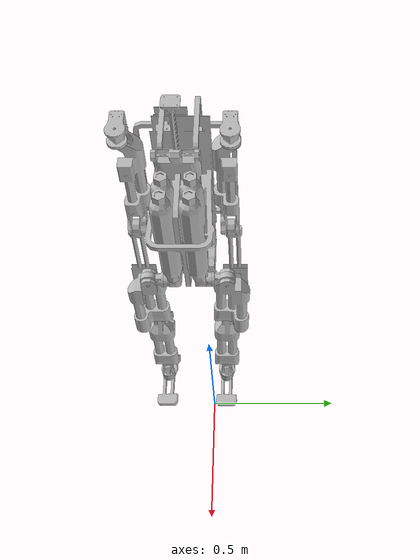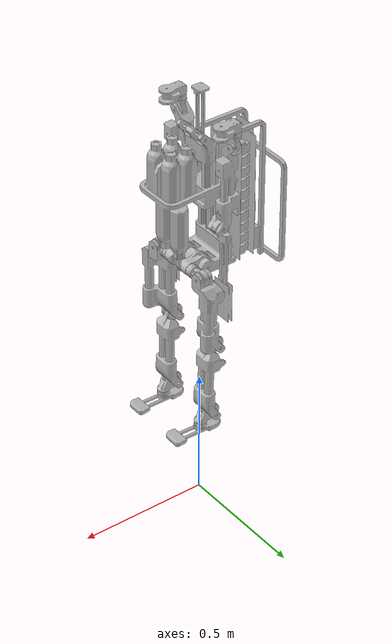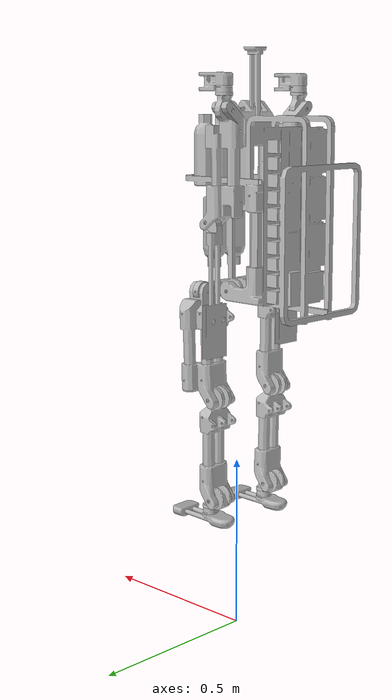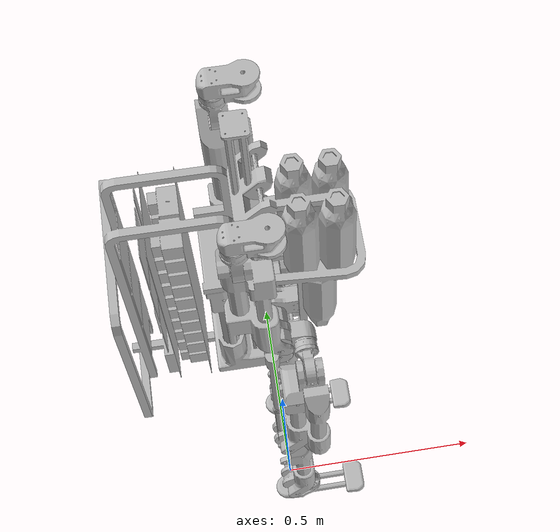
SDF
<?xml version='1.0'?>
<sdf version='1.4'>
  <model name="athletebot_fixed">
    <include>
      <uri>model://athletebot</uri>
      <pose>0.0 0 1.0 1.57 0.0 0.0</pose>
    </include>

    <joint name="fixed to ground" type="revolute">
      <parent>world</parent>
      <child>athletebot::trunk</child>
       <axis>
        <limit>
          <lower>0</lower>
          <upper>0</upper>
        </limit>
        <xyz>0 0 1</xyz>
        </axis>
    </joint>

  </model>
</sdf>

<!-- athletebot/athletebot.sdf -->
<sdf version='1.5'>
  <model name='athletebot'>
    <pose>0 0 0.7 1.57 -0 0</pose>
    <link name='trunk'>
      <pose>0 0 0 0 -0 0</pose>
      <inertial>
        <pose>-0.101196 0.217465 0.0391569 0 -0 0</pose>
        <mass>0.323922</mass>
        <inertia>
          <ixx>0.00844925</ixx>
          <ixy>-0.00131477</ixy>
          <ixz>3.80431e-05</ixz>
          <iyy>0.00389477</iyy>
          <iyz>-4.04572e-05</iyz>
          <izz>0.01073</izz>
        </inertia>
      </inertial>
      <collision name='trunk_collision'>
        <pose>0 0 0 0 -0 0</pose>
        <geometry>
          <mesh>
            <scale>0.001 0.001 0.001</scale>
            <uri>model://athletebot/meshes/trunk_all_asm.stl</uri>
          </mesh>
        </geometry>
        <surface>
          <contact>
            <ode/>
          </contact>
          <friction>
            <ode/>
          </friction>
        </surface>
      </collision>
      <visual name='trunk_visual'>
        <pose>0 0 0 0 -0 0</pose>
        <geometry>
          <mesh>
            <scale>0.001 0.001 0.001</scale>
            <uri>model://athletebot/meshes/trunk_all_asm.stl</uri>
          </mesh>
        </geometry>
      </visual>
      <gravity>1</gravity>
      <velocity_decay/>
      <self_collide>0</self_collide>
      <sensor name='imu_frame' type='imu'>
        <always_on>1</always_on>
        <update_rate>100</update_rate>
        <pose>0 0 0 0 -0 0</pose>
      </sensor>
    </link>
    <link name='l_hip_in_up'>
      <pose>0 0 0.115894 -3.14159 -0 -2.35619</pose>
      <inertial>
        <pose>-0.0380582 -0.0379993 0.141004 0 -0 0</pose>
        <mass>0.119967</mass>
        <inertia>
          <ixx>3.34839e-05</ixx>
          <ixy>-3.54776e-06</ixy>
          <ixz>2.52953e-06</ixz>
          <iyy>3.35663e-05</iyy>
          <iyz>2.49918e-06</iyz>
          <izz>4.17871e-05</izz>
        </inertia>
      </inertial>
      <collision name='l_hip_in_up_collision'>
        <pose>0 0 0.115894 0 -0 0</pose>
        <geometry>
          <mesh>
            <scale>0.001 0.001 0.001</scale>
            <uri>model://athletebot/meshes/l_hip_in_upper_prt.stl</uri>
          </mesh>
        </geometry>
      </collision>
      <collision name='l_hip_in_up_collision_l_hip_in_up_1'>
        <pose>-0.0388909 -0.0388909 0.139194 0 -0 0.261799</pose>
        <geometry>
          <mesh>
            <scale>0.001 0.001 0.001</scale>
            <uri>model://athletebot/meshes/ftsensor45a_asm.stl</uri>
          </mesh>
        </geometry>
      </collision>
      <collision name='l_hip_in_up_collision_l_hip_in_up_2'>
        <pose>1.08316e-14 -2.41543e-14 0.115894 0 -0 0</pose>
        <geometry>
          <mesh>
            <scale>0.001 0.001 0.001</scale>
            <uri>model://athletebot/meshes/l_hip_in_lower_part_prt.stl</uri>
          </mesh>
        </geometry>
      </collision>
      <visual name='l_hip_in_up_visual'>
        <pose>0 0 0.115894 0 -0 0</pose>
        <geometry>
          <mesh>
            <scale>0.001 0.001 0.001</scale>
            <uri>model://athletebot/meshes/l_hip_in_upper_prt.stl</uri>
          </mesh>
        </geometry>
      </visual>
      <visual name='l_hip_in_up_visual_l_hip_in_up_1'>
        <pose>-0.0388909 -0.0388909 0.139194 0 -0 0.261799</pose>
        <geometry>
          <mesh>
            <scale>0.001 0.001 0.001</scale>
            <uri>model://athletebot/meshes/ftsensor45a_asm.stl</uri>
          </mesh>
        </geometry>
      </visual>
      <visual name='l_hip_in_up_visual_l_hip_in_up_2'>
        <pose>1.08316e-14 -2.41543e-14 0.115894 0 -0 0</pose>
        <geometry>
          <mesh>
            <scale>0.001 0.001 0.001</scale>
            <uri>model://athletebot/meshes/l_hip_in_lower_part_prt.stl</uri>
          </mesh>
        </geometry>
      </visual>
    </link>
    <joint name='l_hip_pitch' type='revolute'>
      <child>l_hip_in_up</child>
      <parent>trunk</parent>
      <axis>
        <xyz>1.46246e-13 -1.46246e-13 -1</xyz>
        <limit>
          <lower>-1.57</lower>
          <upper>1.57</upper>
        </limit>
        <dynamics>
          <damping>0.1</damping>
          <friction>0</friction>
          <spring_reference>0</spring_reference>
          <spring_stiffness>0</spring_stiffness>
        </dynamics>
        <use_parent_model_frame>1</use_parent_model_frame>
      </axis>
    </joint>
    <link name='l_thigh'>
      <pose>0.055 1.90955e-13 -0.085 -0.0316366 -1.46245e-13 4.63961e-17</pose>
      <inertial>
        <pose>-0.0218292 -0.145277 -0.0133603 0 -0 0</pose>
        <mass>0.0509976</mass>
        <inertia>
          <ixx>0.000455256</ixx>
          <ixy>-2.0488e-05</ixy>
          <ixz>1.92391e-05</ixz>
          <iyy>8.07892e-05</iyy>
          <iyz>-2.24495e-06</iyz>
          <izz>0.000442805</izz>
        </inertia>
      </inertial>
      <collision name='l_thigh_collision'>
        <pose>-0.055 -0.300401 0 0 -0 0</pose>
        <geometry>
          <mesh>
            <scale>0.001 0.001 0.001</scale>
            <uri>model://athletebot/meshes/l_thigh_asm.stl</uri>
          </mesh>
        </geometry>
      </collision>
      <visual name='l_thigh_visual'>
        <pose>-0.055 -0.300401 0 0 -0 0</pose>
        <geometry>
          <mesh>
            <scale>0.001 0.001 0.001</scale>
            <uri>model://athletebot/meshes/l_thigh_asm.stl</uri>
          </mesh>
        </geometry>
      </visual>
    </link>
    <joint name='l_hip_roll' type='revolute'>
      <child>l_thigh</child>
      <parent>l_hip_in_up</parent>
      <axis>
        <xyz>1 4.63961e-17 1.46245e-13</xyz>
        <limit>
          <lower>-1.5708</lower>
          <upper>1.5708</upper>
          <effort>50000</effort>
          <velocity>50000</velocity>
        </limit>
        <dynamics>
          <damping>0.223</damping>
          <friction>0</friction>
          <spring_reference>0</spring_reference>
          <spring_stiffness>0</spring_stiffness>
        </dynamics>
        <use_parent_model_frame>1</use_parent_model_frame>
      </axis>
    </joint>
    <link name='l_shank'>
      <pose>2.35922e-14 -0.300251 -0.0754979 -0.0316264 0.000803033 0.0253773</pose>
      <inertial>
        <pose>0.0162517 -0.149735 4.58883e-05 0 -0 0</pose>
        <mass>0.0345995</mass>
        <inertia>
          <ixx>0.000312551</ixx>
          <ixy>6.15034e-06</ixy>
          <ixz>1.57279e-08</ixz>
          <iyy>3.02698e-05</iyy>
          <iyz>2.99291e-08</iyz>
          <izz>0.000301933</izz>
        </inertia>
      </inertial>
      <collision name='l_shank_collision'>
        <pose>0 -0.3 0 0 -0 0</pose>
        <geometry>
          <mesh>
            <scale>0.001 0.001 0.001</scale>
            <uri>model://athletebot/meshes/l_shank_asm.stl</uri>
          </mesh>
        </geometry>
      </collision>
      <visual name='l_shank_visual'>
        <pose>0 -0.3 0 0 -0 0</pose>
        <geometry>
          <mesh>
            <scale>0.001 0.001 0.001</scale>
            <uri>model://athletebot/meshes/l_shank_asm.stl</uri>
          </mesh>
        </geometry>
      </visual>
    </link>
    <joint name='l_knee_pitch' type='revolute'>
      <child>l_shank</child>
      <parent>l_thigh</parent>
      <axis>
        <xyz>3.7599e-10 -0.0316313 -0.9995</xyz>
        <limit>
          <lower>-2.61799</lower>
          <upper>2.61799</upper>
          <effort>50000</effort>
          <velocity>50000</velocity>
        </limit>
        <dynamics>
          <damping>0.223</damping>
          <friction>0</friction>
          <spring_reference>0</spring_reference>
          <spring_stiffness>0</spring_stiffness>
        </dynamics>
        <use_parent_model_frame>1</use_parent_model_frame>
      </axis>
    </joint>
    <link name='l_foot'>
      <pose>0.00761621 -0.596339 0.0498248 -3.14079 0.0316264 1.5962</pose>
      <inertial>
        <pose>-0.0472636 0.0354762 0.115935 0 -0 0</pose>
        <mass>0.122842</mass>
        <inertia>
          <ixx>7.60181e-04</ixx>
          <ixy>7.85001e-06</ixy>
          <ixz>-2.08089e-08</ixz>
          <iyy>3.11261e-04</iyy>
          <iyz>3.75761e-08</iyz>
          <izz>7.00553e-04</izz>
        </inertia>
      </inertial>
      <collision name='l_foot_collision'>
        <pose>8.89112e-07 0 0.115894 0 -0 0</pose>
        <geometry>
          <mesh>
            <scale>0.001 0.001 0.001</scale>
            <uri>model://athletebot/meshes/l_foot_prt.stl</uri>
          </mesh>
        </geometry>
      </collision>
      <collision name='l_foot_collision_l_foot_1'>
        <pose>-0.0489995 0.035 0.115894 1.5708 0.523599 1.5708</pose>
        <geometry>
          <mesh>
            <scale>0.001 0.001 0.001</scale>
            <uri>model://athletebot/meshes/ftsensor45a_asm.stl</uri>
          </mesh>
        </geometry>
      </collision>
      <collision name='l_foot_collision_l_foot_2'>
        <pose>-0.0207992 1.81677e-08 0.115894 -3.14159 -1.80002e-09 1.5708</pose>
        <geometry>
          <mesh>
            <scale>0.001 0.001 0.001</scale>
            <uri>model://athletebot/meshes/l_sole_asm.stl</uri>
          </mesh>
        </geometry>
      </collision>
      <visual name='l_foot_visual'>
        <pose>8.89112e-07 0 0.115894 0 -0 0</pose>
        <geometry>
          <mesh>
            <scale>0.001 0.001 0.001</scale>
            <uri>model://athletebot/meshes/l_foot_prt.stl</uri>
          </mesh>
        </geometry>
      </visual>
      <visual name='l_foot_visual_l_foot_1'>
        <pose>-0.0489995 0.035 0.115894 1.5708 0.523599 1.5708</pose>
        <geometry>
          <mesh>
            <scale>0.001 0.001 0.001</scale>
            <uri>model://athletebot/meshes/ftsensor45a_asm.stl</uri>
          </mesh>
        </geometry>
      </visual>
      <visual name='l_foot_visual_l_foot_2'>
        <pose>-0.0207992 1.81677e-08 0.115894 -3.14159 -1.80002e-09 1.5708</pose>
        <geometry>
          <mesh>
            <scale>0.001 0.001 0.001</scale>
            <uri>model://athletebot/meshes/l_sole_asm.stl</uri>
          </mesh>
        </geometry>
      </visual>
    </link>
    <joint name='l_ankle_pitch' type='revolute'>
      <child>l_foot</child>
      <parent>l_shank</parent>
      <axis>
        <xyz>3.65757e-10 -0.0316313 -0.9995</xyz>
        <limit>
          <lower>-1.5708</lower>
          <upper>1.5708</upper>
          <effort>50000</effort>
          <velocity>50000</velocity>
        </limit>
        <dynamics>
          <damping>0.223</damping>
          <friction>0</friction>
          <spring_reference>0</spring_reference>
          <spring_stiffness>0</spring_stiffness>
        </dynamics>
        <use_parent_model_frame>1</use_parent_model_frame>
      </axis>
    </joint>
    <link name='l_shoulder_lateral'>
      <pose>0 0.5 0.006 0 -0 0</pose>
      <inertial>
        <pose>0.041059 0.062206 -0.0672789 0 -0 0</pose>
        <mass>0.0218958</mass>
        <inertia>
          <ixx>9.28285e-05</ixx>
          <ixy>-6.1149e-06</ixy>
          <ixz>1.00449e-06</ixz>
          <iyy>8.15747e-05</iyy>
          <iyz>1.26841e-05</iyz>
          <izz>3.87872e-05</izz>
        </inertia>
      </inertial>
    </link>
    <joint name='l_shoulder_pitch' type='revolute'>
      <child>l_shoulder_lateral</child>
      <parent>trunk</parent>
      <axis>
        <xyz>0 0 1</xyz>
        <limit>
          <lower>-2.61799</lower>
          <upper>2.61799</upper>
          <effort>50000</effort>
          <velocity>50000</velocity>
        </limit>
        <dynamics>
          <damping>0.223</damping>
          <friction>0</friction>
          <spring_reference>0</spring_reference>
          <spring_stiffness>0</spring_stiffness>
        </dynamics>
        <use_parent_model_frame>1</use_parent_model_frame>
      </axis>
    </joint>
    <link name='l_shoulder_in_up'>
      <pose>0 0.434473 -0.11 1.5708 0.785398 -7.85046e-17</pose>
      <inertial>
        <pose>-0.0379632 -0.0379035 -0.121205 0 -0 0</pose>
        <mass>0.120115</mass>
        <inertia>
          <ixx>3.22547e-05</ixx>
          <ixy>-3.84791e-06</ixy>
          <ixz>1.77678e-06</ixz>
          <iyy>3.23387e-05</iyy>
          <iyz>1.74945e-06</iyz>
          <izz>4.18874e-05</izz>
        </inertia>
      </inertial>
      <collision name='l_shoulder_in_up_collision'>
        <pose>0 0 -0.137527 0 -0 0</pose>
        <geometry>
          <mesh>
            <scale>0.001 0.001 0.001</scale>
            <uri>model://athletebot/meshes/l_shoulder_in_upper_prt.stl</uri>
          </mesh>
        </geometry>
      </collision>
      <collision name='l_shoulder_in_up_collision_l_shoulder_in_up_1'>
        <pose>-0.0388909 -0.0388909 -0.123227 0 -0 0.261799</pose>
        <geometry>
          <mesh>
            <scale>0.001 0.001 0.001</scale>
            <uri>model://athletebot/meshes/ftsensor45a_asm.stl</uri>
          </mesh>
        </geometry>
      </collision>
      <collision name='l_shoulder_in_up_collision_l_shoulder_in_up_2'>
        <pose>1.08316e-14 -2.41543e-14 -0.137527 0 -0 0</pose>
        <geometry>
          <mesh>
            <scale>0.001 0.001 0.001</scale>
            <uri>model://athletebot/meshes/l_shoulder_in_lower_part_prt.stl</uri>
          </mesh>
        </geometry>
      </collision>
      <visual name='l_shoulder_in_up_visual'>
        <pose>0 0 -0.137527 0 -0 0</pose>
        <geometry>
          <mesh>
            <scale>0.001 0.001 0.001</scale>
            <uri>model://athletebot/meshes/l_shoulder_in_upper_prt.stl</uri>
          </mesh>
        </geometry>
      </visual>
      <visual name='l_shoulder_in_up_visual_l_shoulder_in_up_1'>
        <pose>-0.0388909 -0.0388909 -0.123227 0 -0 0.261799</pose>
        <geometry>
          <mesh>
            <scale>0.001 0.001 0.001</scale>
            <uri>model://athletebot/meshes/ftsensor45a_asm.stl</uri>
          </mesh>
        </geometry>
      </visual>
      <visual name='l_shoulder_in_up_visual_l_shoulder_in_up_2'>
        <pose>1.08316e-14 -2.41543e-14 -0.137527 0 -0 0</pose>
        <geometry>
          <mesh>
            <scale>0.001 0.001 0.001</scale>
            <uri>model://athletebot/meshes/l_shoulder_in_lower_part_prt.stl</uri>
          </mesh>
        </geometry>
      </visual>
    </link>
    <joint name='l_shoulder_yaw' type='revolute'>
      <child>l_shoulder_in_up</child>
      <parent>l_shoulder_lateral</parent>
      <axis>
        <xyz>-3.46251e-12 1 -3.46255e-12</xyz>
        <limit>
          <lower>-2.61799</lower>
          <upper>2.61799</upper>
          <effort>50000</effort>
          <velocity>50000</velocity>
        </limit>
        <dynamics>
          <damping>0.223</damping>
          <friction>0</friction>
          <spring_reference>0</spring_reference>
          <spring_stiffness>0</spring_stiffness>
        </dynamics>
        <use_parent_model_frame>1</use_parent_model_frame>
      </axis>
    </joint>
    <link name='l_humerous'>
      <pose>-0.055 0.498 -0.11 1.43421e-12 -2.48295e-24 3.46245e-12</pose>
      <inertial>
        <pose>0.0131526 -0.155324 0.0173149 0 -0 0</pose>
        <mass>0.03366</mass>
        <inertia>
          <ixx>0.000303096</ixx>
          <ixy>1.66025e-05</ixy>
          <ixz>6.79119e-06</ixz>
          <iyy>3.37424e-05</iyy>
          <iyz>-1.57072e-06</iyz>
          <izz>0.000315904</izz>
        </inertia>
      </inertial>
      <collision name='l_humerous_collision'>
        <pose>0 0 0 0 -0 0</pose>
        <geometry>
          <mesh>
            <scale>0.001 0.001 0.001</scale>
            <uri>model://athletebot/meshes/l_humerous_asm.stl</uri>
          </mesh>
        </geometry>
      </collision>
      <visual name='l_humerous_visual'>
        <pose>0 0 0 0 -0 0</pose>
        <geometry>
          <mesh>
            <scale>0.001 0.001 0.001</scale>
            <uri>model://athletebot/meshes/l_humerous_asm.stl</uri>
          </mesh>
        </geometry>
      </visual>
    </link>
    <joint name='l_shoulder_roll' type='revolute'>
      <child>l_humerous</child>
      <parent>l_shoulder_in_up</parent>
      <axis>
        <xyz>-1 -3.46245e-12 -2.48295e-24</xyz>
        <limit>
          <lower>-1.5708</lower>
          <upper>1.5708</upper>
          <effort>50000</effort>
          <velocity>50000</velocity>
        </limit>
        <dynamics>
          <damping>0.223</damping>
          <friction>0</friction>
          <spring_reference>0</spring_reference>
          <spring_stiffness>0</spring_stiffness>
        </dynamics>
        <use_parent_model_frame>1</use_parent_model_frame>
      </axis>
    </joint>
    <link name='l_forearm'>
      <pose>8.23189e-13 0.198 -0.11 1.43421e-12 -2.48295e-24 3.46245e-12</pose>
      <inertial>
        <pose>-0.0145878 -0.157939 0.001401 0 -0 0</pose>
        <mass>0.00562639</mass>
        <inertia>
          <ixx>9.9794e-05</ixx>
          <ixy>-2.14183e-06</ixy>
          <ixz>-5.77187e-08</ixz>
          <iyy>1.97858e-06</iyy>
          <iyz>-1.17545e-06</iyz>
          <izz>9.89068e-05</izz>
        </inertia>
      </inertial>
      <collision name='l_forearm_collision'>
        <pose>0 0 0 0 -0 0</pose>
        <geometry>
          <mesh>
            <scale>0.001 0.001 0.001</scale>
            <uri>model://athletebot/meshes/l_forearm_asm.stl</uri>
          </mesh>
        </geometry>
      </collision>
      <visual name='l_forearm_visual'>
        <pose>0 0 0 0 -0 0</pose>
        <geometry>
          <mesh>
            <scale>0.001 0.001 0.001</scale>
            <uri>model://athletebot/meshes/l_forearm_asm.stl</uri>
          </mesh>
        </geometry>
      </visual>
    </link>
    <joint name='l_elbow_pitch' type='revolute'>
      <child>l_forearm</child>
      <parent>l_humerous</parent>
      <axis>
        <xyz>-2.48295e-24 1.43421e-12 -1</xyz>
        <limit>
          <lower>-2.61799</lower>
          <upper>2.61799</upper>
          <effort>50000</effort>
          <velocity>50000</velocity>
        </limit>
        <dynamics>
          <damping>0.223</damping>
          <friction>0</friction>
          <spring_reference>0</spring_reference>
          <spring_stiffness>0</spring_stiffness>
        </dynamics>
        <use_parent_model_frame>1</use_parent_model_frame>
      </axis>
    </joint>
    <link name='r_hip_in_up'>
      <pose>0 0 -0.0358943 -3.14159 -0 -2.35619</pose>
      <inertial>
        <pose>-0.0380811 -0.0380847 -0.141004 0 -0 0</pose>
        <mass>0.119967</mass>
        <inertia>
          <ixx>3.35405e-05</ixx>
          <ixy>-3.49057e-06</ixy>
          <ixz>-2.54102e-06</ixz>
          <iyy>3.35316e-05</iyy>
          <iyz>-2.54206e-06</iyz>
          <izz>4.1809e-05</izz>
        </inertia>
      </inertial>
      <collision name='r_hip_in_up_collision'>
        <pose>0 0 -0.115894 0 -0 0</pose>
        <geometry>
          <mesh>
            <scale>0.001 0.001 0.001</scale>
            <uri>model://athletebot/meshes/r_hip_in_upper_prt.stl</uri>
          </mesh>
        </geometry>
      </collision>
      <collision name='r_hip_in_up_collision_r_hip_in_up_1'>
        <pose>-0.0388909 -0.0388909 -0.139194 -3.14159 -0 -0.785398</pose>
        <geometry>
          <mesh>
            <scale>0.001 0.001 0.001</scale>
            <uri>model://athletebot/meshes/ftsensor45a_asm.stl</uri>
          </mesh>
        </geometry>
      </collision>
      <collision name='r_hip_in_up_collision_r_hip_in_up_2'>
        <pose>2.35229e-14 -1.07483e-14 -0.115894 3.53069e-13 -1.46246e-13 -1.82557e-26</pose>
        <geometry>
          <mesh>
            <scale>0.001 0.001 0.001</scale>
            <uri>model://athletebot/meshes/r_hip_in_lower_part_prt.stl</uri>
          </mesh>
        </geometry>
      </collision>
      <visual name='r_hip_in_up_visual'>
        <pose>0 0 -0.115894 0 -0 0</pose>
        <geometry>
          <mesh>
            <scale>0.001 0.001 0.001</scale>
            <uri>model://athletebot/meshes/r_hip_in_upper_prt.stl</uri>
          </mesh>
        </geometry>
      </visual>
      <visual name='r_hip_in_up_visual_r_hip_in_up_1'>
        <pose>-0.0388909 -0.0388909 -0.139194 -3.14159 -0 -0.785398</pose>
        <geometry>
          <mesh>
            <scale>0.001 0.001 0.001</scale>
            <uri>model://athletebot/meshes/ftsensor45a_asm.stl</uri>
          </mesh>
        </geometry>
      </visual>
      <visual name='r_hip_in_up_visual_r_hip_in_up_2'>
        <pose>2.35229e-14 -1.07483e-14 -0.115894 3.53069e-13 -1.46246e-13 -1.82557e-26</pose>
        <geometry>
          <mesh>
            <scale>0.001 0.001 0.001</scale>
            <uri>model://athletebot/meshes/r_hip_in_lower_part_prt.stl</uri>
          </mesh>
        </geometry>
      </visual>
    </link>
    <joint name='r_hip_pitch' type='revolute'>
      <child>r_hip_in_up</child>
      <parent>trunk</parent>
      <axis>
        <xyz>1.46246e-13 -1.46246e-13 -1</xyz>
        <limit>
          <lower>-1.57</lower>
          <upper>1.57</upper>
        </limit>
        <dynamics>
          <damping>0.1</damping>
          <friction>0</friction>
          <spring_reference>0</spring_reference>
          <spring_stiffness>0</spring_stiffness>
        </dynamics>
        <use_parent_model_frame>1</use_parent_model_frame>
      </axis>
    </joint>
    <link name='r_thigh'>
      <pose>0.055 2.62644e-13 0.165 0.00594316 -4.99314e-13 -2.67257e-16</pose>
      <inertial>
        <pose>-0.0218292 -0.145277 0.0133606 0 -0 0</pose>
        <mass>0.0509976</mass>
        <inertia>
          <ixx>0.000455257</ixx>
          <ixy>-2.04882e-05</ixy>
          <ixz>-1.92393e-05</ixz>
          <iyy>8.07897e-05</iyy>
          <iyz>2.24473e-06</iyz>
          <izz>0.000442805</izz>
        </inertia>
      </inertial>
      <collision name='r_thigh_collision'>
        <pose>-0.055 -0.300401 3.21303e-07 0 -0 0</pose>
        <geometry>
          <mesh>
            <scale>0.001 0.001 0.001</scale>
            <uri>model://athletebot/meshes/r_thigh_asm.stl</uri>
          </mesh>
        </geometry>
      </collision>
      <visual name='r_thigh_visual'>
        <pose>-0.055 -0.300401 3.21303e-07 0 -0 0</pose>
        <geometry>
          <mesh>
            <scale>0.001 0.001 0.001</scale>
            <uri>model://athletebot/meshes/r_thigh_asm.stl</uri>
          </mesh>
        </geometry>
      </visual>
    </link>
    <joint name='r_hip_roll' type='revolute'>
      <child>r_thigh</child>
      <parent>r_hip_in_up</parent>
      <axis>
        <xyz>-1 2.67257e-16 -4.99314e-13</xyz>
        <limit>
          <lower>-1.5708</lower>
          <upper>1.5708</upper>
          <effort>50000</effort>
          <velocity>50000</velocity>
        </limit>
        <dynamics>
          <damping>0.223</damping>
          <friction>0</friction>
          <spring_reference>0</spring_reference>
          <spring_stiffness>0</spring_stiffness>
        </dynamics>
        <use_parent_model_frame>1</use_parent_model_frame>
      </axis>
    </joint>
    <link name='r_shank'>
      <pose>-2.30926e-14 -0.299702 0.0463224 0.00594238 -9.61888e-05 0.0161853</pose>
      <inertial>
        <pose>0.0162516 -0.149735 0.116849 0 -0 0</pose>
        <mass>0.0345995</mass>
        <inertia>
          <ixx>0.000312551</ixx>
          <ixy>6.15034e-06</ixy>
          <ixz>-1.57279e-08</ixz>
          <iyy>3.02698e-05</iyy>
          <iyz>-2.99285e-08</iyz>
          <izz>0.000301933</izz>
        </inertia>
      </inertial>
      <collision name='r_shank_collision'>
        <pose>0 -0.3 0.116894 0 -0 0</pose>
        <geometry>
          <mesh>
            <scale>0.001 0.001 0.001</scale>
            <uri>model://athletebot/meshes/r_shank_asm.stl</uri>
          </mesh>
        </geometry>
      </collision>
      <visual name='r_shank_visual'>
        <pose>0 -0.3 0.116894 0 -0 0</pose>
        <geometry>
          <mesh>
            <scale>0.001 0.001 0.001</scale>
            <uri>model://athletebot/meshes/r_shank_asm.stl</uri>
          </mesh>
        </geometry>
      </visual>
    </link>
    <joint name='r_knee_pitch' type='revolute'>
      <child>r_shank</child>
      <parent>r_thigh</parent>
      <axis>
        <xyz>-6.67854e-11 0.00594312 -0.999982</xyz>
        <limit>
          <lower>-2.61799</lower>
          <upper>2.61799</upper>
          <effort>50000</effort>
          <velocity>50000</velocity>
        </limit>
        <dynamics>
          <damping>0.223</damping>
          <friction>0</friction>
          <spring_reference>0</spring_reference>
          <spring_stiffness>0</spring_stiffness>
        </dynamics>
        <use_parent_model_frame>1</use_parent_model_frame>
      </axis>
    </joint>
    <link name='r_foot'>
      <pose>0.00485546 -0.599663 0.0455397 3.1415 -0.00594242 1.58659</pose>
      <inertial>
        <pose>-0.0472645 0.0354762 -0.115853 0 -0 0</pose>
        <mass>0.122842</mass>
        <inertia>
          <ixx>7.60181e-04</ixx>
          <ixy>7.84995e-06</ixy>
          <ixz>-2.06566e-08</ixz>
          <iyy>3.1126e-04</iyy>
          <iyz>3.74682e-08</iyz>
          <izz>7.00552e-04</izz>
        </inertia>
      </inertial>
      <collision name='r_foot_collision'>
        <pose>-2.25845e-07 0 -0.115894 0 -0 0</pose>
        <geometry>
          <mesh>
            <scale>0.001 0.001 0.001</scale>
            <uri>model://athletebot/meshes/r_foot_prt.stl</uri>
          </mesh>
        </geometry>
      </collision>
      <collision name='r_foot_collision_r_foot_1'>
        <pose>-0.0489998 0.035 -0.115894 1.5708 0.523599 1.5708</pose>
        <geometry>
          <mesh>
            <scale>0.001 0.001 0.001</scale>
            <uri>model://athletebot/meshes/ftsensor45a_asm.stl</uri>
          </mesh>
        </geometry>
      </collision>
      <collision name='r_foot_collision_r_foot_2'>
        <pose>-0.0208002 5.05203e-10 -0.115894 3.14159 -3.70641e-11 1.5708</pose>
        <geometry>
          <mesh>
            <scale>0.001 0.001 0.001</scale>
            <uri>model://athletebot/meshes/r_sole_asm.stl</uri>
          </mesh>
        </geometry>
      </collision>
      <visual name='r_foot_visual'>
        <pose>-2.25845e-07 0 -0.115894 0 -0 0</pose>
        <geometry>
          <mesh>
            <scale>0.001 0.001 0.001</scale>
            <uri>model://athletebot/meshes/r_foot_prt.stl</uri>
          </mesh>
        </geometry>
      </visual>
      <visual name='r_foot_visual_r_foot_1'>
        <pose>-0.0489998 0.035 -0.115894 1.5708 0.523599 1.5708</pose>
        <geometry>
          <mesh>
            <scale>0.001 0.001 0.001</scale>
            <uri>model://athletebot/meshes/ftsensor45a_asm.stl</uri>
          </mesh>
        </geometry>
      </visual>
      <visual name='r_foot_visual_r_foot_2'>
        <pose>-0.0208002 5.05203e-10 -0.115894 3.14159 -3.70641e-11 1.5708</pose>
        <geometry>
          <mesh>
            <scale>0.001 0.001 0.001</scale>
            <uri>model://athletebot/meshes/r_sole_asm.stl</uri>
          </mesh>
        </geometry>
      </visual>
    </link>
    <joint name='r_ankle_pitch' type='revolute'>
      <child>r_foot</child>
      <parent>r_shank</parent>
      <axis>
        <xyz>-5.91151e-11 0.00594312 -0.999982</xyz>
        <limit>
          <lower>-1.5708</lower>
          <upper>1.5708</upper>
          <effort>50000</effort>
          <velocity>50000</velocity>
        </limit>
        <dynamics>
          <damping>0.223</damping>
          <friction>0</friction>
          <spring_reference>0</spring_reference>
          <spring_stiffness>0</spring_stiffness>
        </dynamics>
        <use_parent_model_frame>1</use_parent_model_frame>
      </axis>
    </joint>
    <link name='r_shoulder_lateral'>
      <pose>0 0.5 0.074 0 -0 0</pose>
      <inertial>
        <pose>0.041059 0.062206 0.067279 0 -0 0</pose>
        <mass>0.0218958</mass>
        <inertia>
          <ixx>9.28285e-05</ixx>
          <ixy>-6.1149e-06</ixy>
          <ixz>-1.00449e-06</ixz>
          <iyy>8.15747e-05</iyy>
          <iyz>-1.26841e-05</iyz>
          <izz>3.87872e-05</izz>
        </inertia>
      </inertial>
    </link>
    <joint name='r_shoulder_pitch' type='revolute'>
      <child>r_shoulder_lateral</child>
      <parent>trunk</parent>
      <axis>
        <xyz>0 0 1</xyz>
        <limit>
          <lower>-2.61799</lower>
          <upper>2.61799</upper>
          <effort>50000</effort>
          <velocity>50000</velocity>
        </limit>
        <dynamics>
          <damping>0.223</damping>
          <friction>0</friction>
          <spring_reference>0</spring_reference>
          <spring_stiffness>0</spring_stiffness>
        </dynamics>
        <use_parent_model_frame>1</use_parent_model_frame>
      </axis>
    </joint>
    <link name='r_shoulder_in_up'>
      <pose>0 0.434473 0.19 -1.5708 -0.785398 -7.85046e-17</pose>
      <inertial>
        <pose>-0.0379861 -0.0379888 0.121205 0 -0 0</pose>
        <mass>0.120115</mass>
        <inertia>
          <ixx>3.23133e-05</ixx>
          <ixy>-3.79193e-06</ixy>
          <ixz>-1.78769e-06</ixz>
          <iyy>3.23045e-05</iyy>
          <iyz>-1.79017e-06</iyz>
          <izz>4.19118e-05</izz>
        </inertia>
      </inertial>
      <collision name='r_shoulder_in_up_collision'>
        <pose>0 0 0.137527 0 -0 0</pose>
        <geometry>
          <mesh>
            <scale>0.001 0.001 0.001</scale>
            <uri>model://athletebot/meshes/r_shoulder_in_upper_prt.stl</uri>
          </mesh>
        </geometry>
      </collision>
      <collision name='r_shoulder_in_up_collision_r_shoulder_in_up_1'>
        <pose>-0.0388909 -0.0388909 0.123227 -3.14159 -0 -0.785398</pose>
        <geometry>
          <mesh>
            <scale>0.001 0.001 0.001</scale>
            <uri>model://athletebot/meshes/ftsensor45a_asm.stl</uri>
          </mesh>
        </geometry>
      </collision>
      <collision name='r_shoulder_in_up_collision_r_shoulder_in_up_2'>
        <pose>2.48412e-14 -9.4369e-15 0.137527 -6.05771e-14 -1.46246e-13 -3.13219e-27</pose>
        <geometry>
          <mesh>
            <scale>0.001 0.001 0.001</scale>
            <uri>model://athletebot/meshes/r_shoulder_in_lower_part_prt.stl</uri>
          </mesh>
        </geometry>
      </collision>
      <visual name='r_shoulder_in_up_visual'>
        <pose>0 0 0.137527 0 -0 0</pose>
        <geometry>
          <mesh>
            <scale>0.001 0.001 0.001</scale>
            <uri>model://athletebot/meshes/r_shoulder_in_upper_prt.stl</uri>
          </mesh>
        </geometry>
      </visual>
      <visual name='r_shoulder_in_up_visual_r_shoulder_in_up_1'>
        <pose>-0.0388909 -0.0388909 0.123227 -3.14159 -0 -0.785398</pose>
        <geometry>
          <mesh>
            <scale>0.001 0.001 0.001</scale>
            <uri>model://athletebot/meshes/ftsensor45a_asm.stl</uri>
          </mesh>
        </geometry>
      </visual>
      <visual name='r_shoulder_in_up_visual_r_shoulder_in_up_2'>
        <pose>2.48412e-14 -9.4369e-15 0.137527 -6.05771e-14 -1.46246e-13 -3.13219e-27</pose>
        <geometry>
          <mesh>
            <scale>0.001 0.001 0.001</scale>
            <uri>model://athletebot/meshes/r_shoulder_in_lower_part_prt.stl</uri>
          </mesh>
        </geometry>
      </visual>
    </link>
    <joint name='r_shoulder_yaw' type='revolute'>
      <child>r_shoulder_in_up</child>
      <parent>r_shoulder_lateral</parent>
      <axis>
        <xyz>3.46251e-12 -1 -3.46255e-12</xyz>
        <limit>
          <lower>-2.61799</lower>
          <upper>2.61799</upper>
          <effort>50000</effort>
          <velocity>50000</velocity>
        </limit>
        <dynamics>
          <damping>0.223</damping>
          <friction>0</friction>
          <spring_reference>0</spring_reference>
          <spring_stiffness>0</spring_stiffness>
        </dynamics>
        <use_parent_model_frame>1</use_parent_model_frame>
      </axis>
    </joint>
    <link name='r_humerous'>
      <pose>-0.055 0.498 0.19 -1.58043e-12 5.55112e-17 3.52313e-12</pose>
      <inertial>
        <pose>0.0131526 -0.155324 -0.017315 0 -0 0</pose>
        <mass>0.03366</mass>
        <inertia>
          <ixx>0.000303096</ixx>
          <ixy>1.66024e-05</ixy>
          <ixz>-6.79104e-06</ixz>
          <iyy>3.37422e-05</iyy>
          <iyz>1.57056e-06</iyz>
          <izz>0.000315904</izz>
        </inertia>
      </inertial>
      <collision name='r_humerous_collision'>
        <pose>0 0 0 0 -0 0</pose>
        <geometry>
          <mesh>
            <scale>0.001 0.001 0.001</scale>
            <uri>model://athletebot/meshes/r_humerous_asm.stl</uri>
          </mesh>
        </geometry>
      </collision>
      <visual name='r_humerous_visual'>
        <pose>0 0 0 0 -0 0</pose>
        <geometry>
          <mesh>
            <scale>0.001 0.001 0.001</scale>
            <uri>model://athletebot/meshes/r_humerous_asm.stl</uri>
          </mesh>
        </geometry>
      </visual>
    </link>
    <joint name='r_shoulder_roll' type='revolute'>
      <child>r_humerous</child>
      <parent>r_shoulder_in_up</parent>
      <axis>
        <xyz>1 3.52313e-12 -5.55112e-17</xyz>
        <limit>
          <lower>-1.5708</lower>
          <upper>1.5708</upper>
          <effort>50000</effort>
          <velocity>50000</velocity>
        </limit>
        <dynamics>
          <damping>0.223</damping>
          <friction>0</friction>
          <spring_reference>0</spring_reference>
          <spring_stiffness>0</spring_stiffness>
        </dynamics>
        <use_parent_model_frame>1</use_parent_model_frame>
      </axis>
    </joint>
    <link name='r_forearm'>
      <pose>8.66189e-13 0.198 0.107379 -1.58043e-12 5.55112e-17 3.52313e-12</pose>
      <inertial>
        <pose>-0.0145878 -0.157939 0.08122 0 -0 0</pose>
        <mass>0.00562639</mass>
        <inertia>
          <ixx>9.9794e-05</ixx>
          <ixy>-2.14183e-06</ixy>
          <ixz>5.77187e-08</ixz>
          <iyy>1.97858e-06</iyy>
          <iyz>1.17545e-06</iyz>
          <izz>9.89068e-05</izz>
        </inertia>
      </inertial>
      <collision name='r_forearm_collision'>
        <pose>0 0 0.082621 0 -0 0</pose>
        <geometry>
          <mesh>
            <scale>0.001 0.001 0.001</scale>
            <uri>model://athletebot/meshes/r_forearm_asm.stl</uri>
          </mesh>
        </geometry>
      </collision>
      <visual name='r_forearm_visual'>
        <pose>0 0 0.082621 0 -0 0</pose>
        <geometry>
          <mesh>
            <scale>0.001 0.001 0.001</scale>
            <uri>model://athletebot/meshes/r_forearm_asm.stl</uri>
          </mesh>
        </geometry>
      </visual>
    </link>
    <joint name='r_elbow_pitch' type='revolute'>
      <child>r_forearm</child>
      <parent>r_humerous</parent>
      <axis>
        <xyz>-5.55111e-17 -1.58043e-12 -1</xyz>
        <limit>
          <lower>-1.57</lower>
          <upper>1.57</upper>
        </limit>
        <dynamics>
          <damping>0.1</damping>
          <friction>0</friction>
          <spring_reference>0</spring_reference>
          <spring_stiffness>0</spring_stiffness>
        </dynamics>
        <use_parent_model_frame>1</use_parent_model_frame>
      </axis>
    </joint>
    <plugin name='controlboard_right_arm' filename='libgazebo_yarp_controlboard.so'>
      <yarpConfigurationFile>model://athletebot/conf/athletebot_right_arm.ini</yarpConfigurationFile>
      <initialConfiguration>0 0 0 0</initialConfiguration>
    </plugin>
    <plugin name='controlboard_right_leg' filename='libgazebo_yarp_controlboard.so'>
      <yarpConfigurationFile>model://athletebot/conf/athletebot_right_leg.ini</yarpConfigurationFile>
      <initialConfiguration>0 0 0 0</initialConfiguration>
    </plugin>
    <plugin name='controlboard_left_arm' filename='libgazebo_yarp_controlboard.so'>
      <yarpConfigurationFile>model://athletebot/conf/athletebot_left_arm.ini</yarpConfigurationFile>
      <initialConfiguration>0 0 0 0</initialConfiguration>
    </plugin>
    <plugin name='controlboard_left_leg' filename='libgazebo_yarp_controlboard.so'>
      <yarpConfigurationFile>model://athletebot/conf/athletebot_left_leg.ini</yarpConfigurationFile>
      <initialConfiguration>0 0 0 0</initialConfiguration>
    </plugin>
  </model>
</sdf>
